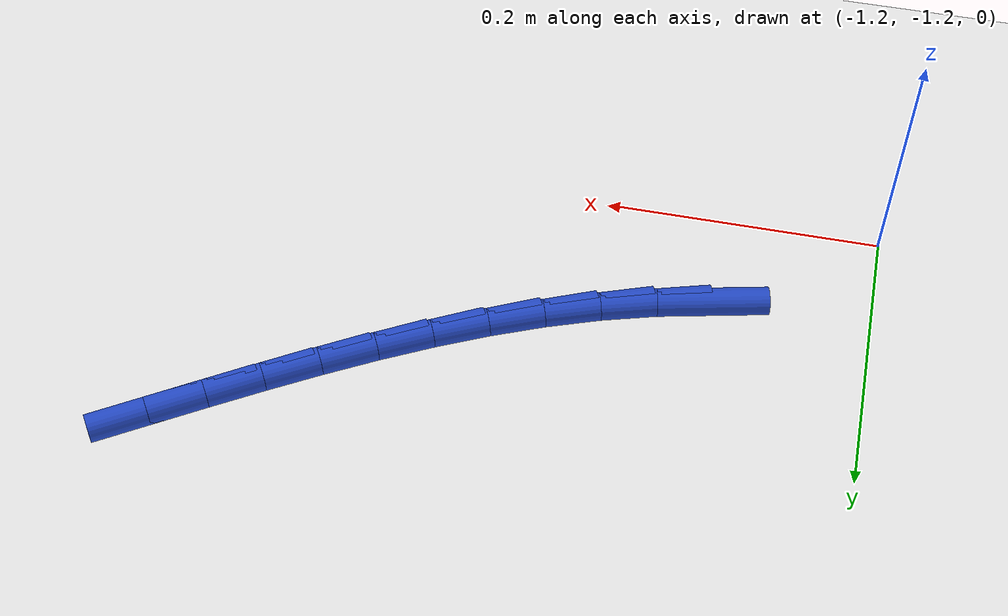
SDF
<sdf version="1.6">
 <world name="default">
  <model name="ground_plane">
   <static>1</static>
   <link name="link">
    <collision name="collision">
     <geometry><plane><normal>0 0 1</normal><size>100 100</size></plane></geometry>
     <surface><friction><ode><mu>100</mu><mu2>50</mu2></ode></friction></surface>
    </collision>
    <visual name="visual">
     <cast_shadows>0</cast_shadows>
     <geometry><plane><normal>0 0 1</normal><size>100 100</size></plane></geometry>
     <material>
      <script><uri>file://media/materials/scripts/gazebo.material</uri><name>Gazebo/WhiteGlow</name></script>
     </material>
    </visual>
   </link>
  </model>
  <model name="line">
   <link name="link_129">
    <pose>-1.086699556905491 -1.1224811921824147 0.01 0 1.57 0.2053468417369336</pose>
    <collision name="collision">
     <geometry><cylinder><radius>0.01</radius><length>0.08</length></cylinder></geometry>
    </collision>
    <visual name="visual">
     <material>
      <script><name>Gazebo/Blue</name><uri>file://media/materials/scripts/gazebo.material</uri></script>
     </material>
     <geometry><cylinder><radius>0.01</radius><length>0.08</length></cylinder></geometry>
    </visual>
   </link>
   <link name="link_130">
    <pose>-1.0469056558449064 -1.114192811849778 0.01 0 1.57 0.2695636979742183</pose>
    <collision name="collision">
     <geometry><cylinder><radius>0.01</radius><length>0.08</length></cylinder></geometry>
    </collision>
    <visual name="visual">
     <material>
      <script><name>Gazebo/Blue</name><uri>file://media/materials/scripts/gazebo.material</uri></script>
     </material>
     <geometry><cylinder><radius>0.01</radius><length>0.08</length></cylinder></geometry>
    </visual>
   </link>
   <link name="link_131">
    <pose>-1.0079158993122173 -1.103420391595695 0.01 0 1.57 0.3271736164402615</pose>
    <collision name="collision">
     <geometry><cylinder><radius>0.01</radius><length>0.08</length></cylinder></geometry>
    </collision>
    <visual name="visual">
     <material>
      <script><name>Gazebo/Blue</name><uri>file://media/materials/scripts/gazebo.material</uri></script>
     </material>
     <geometry><cylinder><radius>0.01</radius><length>0.08</length></cylinder></geometry>
    </visual>
   </link>
   <link name="link_132">
    <pose>-0.9696358323666775 -1.09042928798346 0.01 0 1.57 0.3776968937336899</pose>
    <collision name="collision">
     <geometry><cylinder><radius>0.01</radius><length>0.08</length></cylinder></geometry>
    </collision>
    <visual name="visual">
     <material>
      <script><name>Gazebo/Blue</name><uri>file://media/materials/scripts/gazebo.material</uri></script>
     </material>
     <geometry><cylinder><radius>0.01</radius><length>0.08</length></cylinder></geometry>
    </visual>
   </link>
   <link name="link_133">
    <pose>-0.9319700841347781 -1.0754856039197094 0.01 0 1.57 0.4209292623758609</pose>
    <collision name="collision">
     <geometry><cylinder><radius>0.01</radius><length>0.08</length></cylinder></geometry>
    </collision>
    <visual name="visual">
     <material>
      <script><name>Gazebo/Blue</name><uri>file://media/materials/scripts/gazebo.material</uri></script>
     </material>
     <geometry><cylinder><radius>0.01</radius><length>0.08</length></cylinder></geometry>
    </visual>
   </link>
   <link name="link_134">
    <pose>-0.8948232837430098 -1.0588554423110799 0.01 0 1.57 0.45684802586626283</pose>
    <collision name="collision">
     <geometry><cylinder><radius>0.01</radius><length>0.08</length></cylinder></geometry>
    </collision>
    <visual name="visual">
     <material>
      <script><name>Gazebo/Blue</name><uri>file://media/materials/scripts/gazebo.material</uri></script>
     </material>
     <geometry><cylinder><radius>0.01</radius><length>0.08</length></cylinder></geometry>
    </visual>
   </link>
   <link name="link_135">
    <pose>-0.8581000603178638 -1.0408049060642082 0.01 0 1.57 0.4855431480776303</pose>
    <collision name="collision">
     <geometry><cylinder><radius>0.01</radius><length>0.08</length></cylinder></geometry>
    </collision>
    <visual name="visual">
     <material>
      <script><name>Gazebo/Blue</name><uri>file://media/materials/scripts/gazebo.material</uri></script>
     </material>
     <geometry><cylinder><radius>0.01</radius><length>0.08</length></cylinder></geometry>
    </visual>
   </link>
   <link name="link_136">
    <pose>-0.8217050429858312 -1.021600098085731 0.01 0 1.57 0.5071592679019236</pose>
    <collision name="collision">
     <geometry><cylinder><radius>0.01</radius><length>0.08</length></cylinder></geometry>
    </collision>
    <visual name="visual">
     <material>
      <script><name>Gazebo/Blue</name><uri>file://media/materials/scripts/gazebo.material</uri></script>
     </material>
     <geometry><cylinder><radius>0.01</radius><length>0.08</length></cylinder></geometry>
    </visual>
   </link>
   <link name="link_137">
    <pose>-0.7855428608734046 -1.0015071212822861 0.01 0 1.57 0.5218515947433531</pose>
    <collision name="collision">
     <geometry><cylinder><radius>0.01</radius><length>0.08</length></cylinder></geometry>
    </collision>
    <visual name="visual">
     <material>
      <script><name>Gazebo/Blue</name><uri>file://media/materials/scripts/gazebo.material</uri></script>
     </material>
     <geometry><cylinder><radius>0.01</radius><length>0.08</length></cylinder></geometry>
    </visual>
   </link>
   <link name="link_138">
    <pose>-0.7495181431070744 -0.9807920785605095 0.01 0 1.57 0.5297552996347948</pose>
    <collision name="collision">
     <geometry><cylinder><radius>0.01</radius><length>0.08</length></cylinder></geometry>
    </collision>
    <visual name="visual">
     <material>
      <script><name>Gazebo/Blue</name><uri>file://media/materials/scripts/gazebo.material</uri></script>
     </material>
     <geometry><cylinder><radius>0.01</radius><length>0.08</length></cylinder></geometry>
    </visual>
   </link>
   <link name="link_139">
    <pose>-0.7135355188133324 -0.9597210728270387 0.01 0 1.57 0.5309666258725403</pose>
    <collision name="collision">
     <geometry><cylinder><radius>0.01</radius><length>0.08</length></cylinder></geometry>
    </collision>
    <visual name="visual">
     <material>
      <script><name>Gazebo/Blue</name><uri>file://media/materials/scripts/gazebo.material</uri></script>
     </material>
     <geometry><cylinder><radius>0.01</radius><length>0.08</length></cylinder></geometry>
    </visual>
   </link>
  </model>
 </world>
</sdf>
